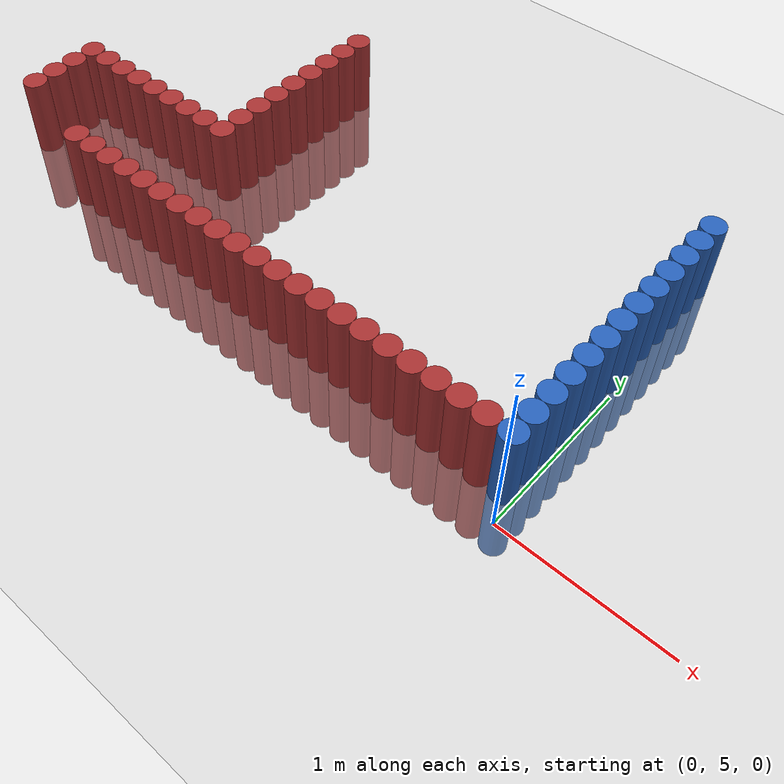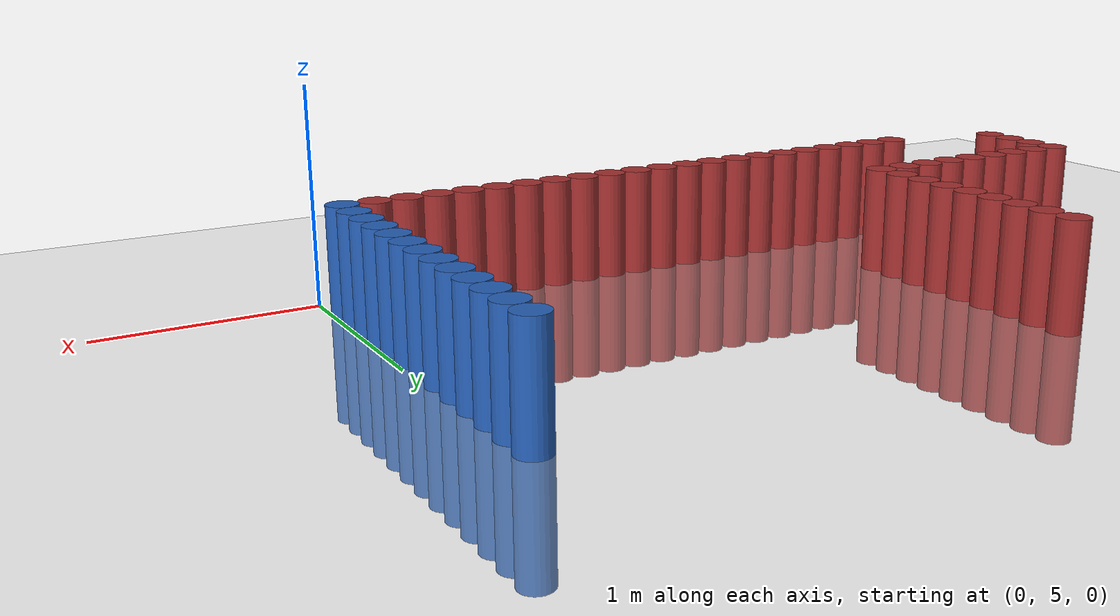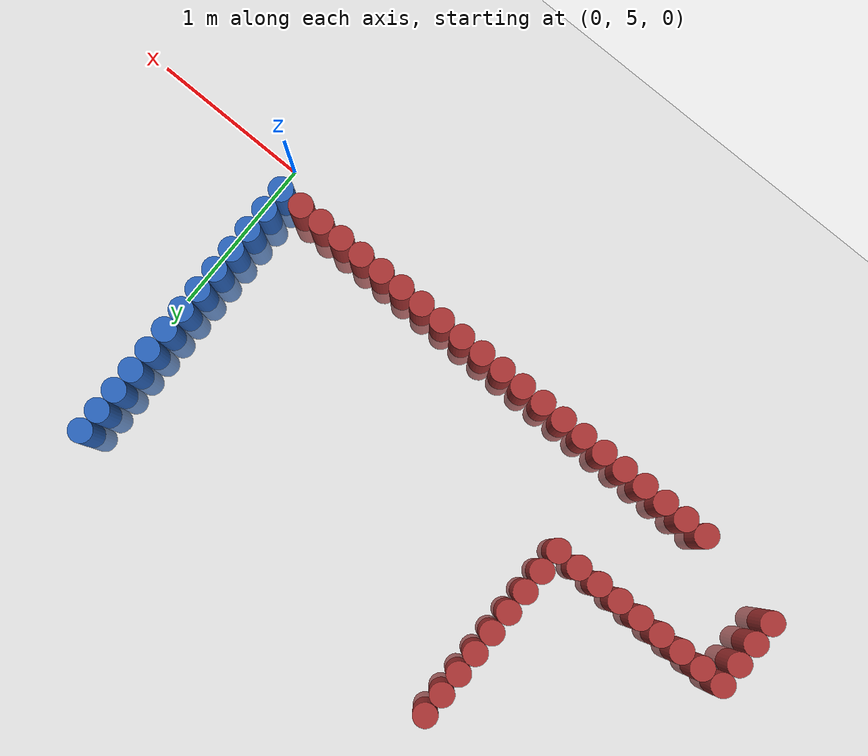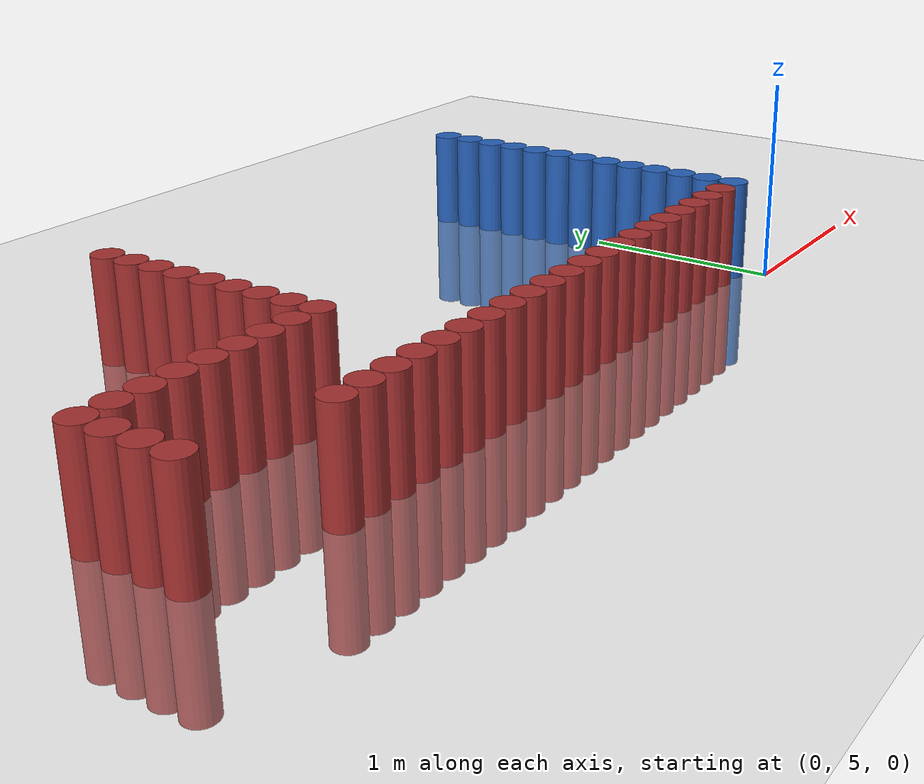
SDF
<sdf version="1.6">
 <world name="default">
  <model name="ground_plane">
   <static>1</static>
   <link name="link">
    <collision name="collision">
     <geometry><plane><normal>0 0 1</normal><size>100 100</size></plane></geometry>
     <surface><friction><ode><mu>100</mu><mu2>50</mu2></ode></friction></surface>
    </collision>
    <visual name="visual">
     <cast_shadows>0</cast_shadows>
     <geometry><plane><normal>0 0 1</normal><size>100 100</size></plane></geometry>
     <material>
      <script><uri>file://media/materials/scripts/gazebo.material</uri><name>Gazebo/Grey</name></script>
     </material>
    </visual>
   </link>
  </model>
  <model name="unit_cylinder_273">
   <static>1</static>
   <pose>-3.825000 5.325000 0.000000 0.000000 0.000000 0.000000</pose>
   <link name="link">
    <inertial>
     <mass>1</mass>
     <inertia><ixx>0.145833</ixx><ixy>0</ixy><ixz>0</ixz><iyy>0.145833</iyy><iyz>0</iyz><izz>0.125</izz></inertia>
    </inertial>
    <collision name="collision">
     <geometry><cylinder><radius>0.075000</radius><length>1</length></cylinder></geometry>
    </collision>
    <visual name="visual">
     <geometry><cylinder><radius>0.075000</radius><length>1</length></cylinder></geometry>
     <material>
      <ambient>0.648000 0.192000 0.192000 1</ambient>
      <diffuse>0.648000 0.192000 0.192000 1</diffuse>
     </material>
     <material>
      <script><name>Gazebo/Grey</name><uri>file://media/materials/scripts/gazebo.material</uri></script>
     </material>
    </visual>
   </link>
  </model>
  <model name="unit_cylinder_274">
   <static>1</static>
   <pose>-3.825000 5.475000 0.000000 0.000000 0.000000 0.000000</pose>
   <link name="link">
    <inertial>
     <mass>1</mass>
     <inertia><ixx>0.145833</ixx><ixy>0</ixy><ixz>0</ixz><iyy>0.145833</iyy><iyz>0</iyz><izz>0.125</izz></inertia>
    </inertial>
    <collision name="collision">
     <geometry><cylinder><radius>0.075000</radius><length>1</length></cylinder></geometry>
    </collision>
    <visual name="visual">
     <geometry><cylinder><radius>0.075000</radius><length>1</length></cylinder></geometry>
     <material>
      <ambient>0.648000 0.192000 0.192000 1</ambient>
      <diffuse>0.648000 0.192000 0.192000 1</diffuse>
     </material>
     <material>
      <script><name>Gazebo/Grey</name><uri>file://media/materials/scripts/gazebo.material</uri></script>
     </material>
    </visual>
   </link>
  </model>
  <model name="unit_cylinder_275">
   <static>1</static>
   <pose>-3.825000 5.625000 0.000000 0.000000 0.000000 0.000000</pose>
   <link name="link">
    <inertial>
     <mass>1</mass>
     <inertia><ixx>0.145833</ixx><ixy>0</ixy><ixz>0</ixz><iyy>0.145833</iyy><iyz>0</iyz><izz>0.125</izz></inertia>
    </inertial>
    <collision name="collision">
     <geometry><cylinder><radius>0.075000</radius><length>1</length></cylinder></geometry>
    </collision>
    <visual name="visual">
     <geometry><cylinder><radius>0.075000</radius><length>1</length></cylinder></geometry>
     <material>
      <ambient>0.648000 0.192000 0.192000 1</ambient>
      <diffuse>0.648000 0.192000 0.192000 1</diffuse>
     </material>
     <material>
      <script><name>Gazebo/Grey</name><uri>file://media/materials/scripts/gazebo.material</uri></script>
     </material>
    </visual>
   </link>
  </model>
  <model name="unit_cylinder_276">
   <static>1</static>
   <pose>-3.825000 5.775000 0.000000 0.000000 0.000000 0.000000</pose>
   <link name="link">
    <inertial>
     <mass>1</mass>
     <inertia><ixx>0.145833</ixx><ixy>0</ixy><ixz>0</ixz><iyy>0.145833</iyy><iyz>0</iyz><izz>0.125</izz></inertia>
    </inertial>
    <collision name="collision">
     <geometry><cylinder><radius>0.075000</radius><length>1</length></cylinder></geometry>
    </collision>
    <visual name="visual">
     <geometry><cylinder><radius>0.075000</radius><length>1</length></cylinder></geometry>
     <material>
      <ambient>0.648000 0.192000 0.192000 1</ambient>
      <diffuse>0.648000 0.192000 0.192000 1</diffuse>
     </material>
     <material>
      <script><name>Gazebo/Grey</name><uri>file://media/materials/scripts/gazebo.material</uri></script>
     </material>
    </visual>
   </link>
  </model>
  <model name="unit_cylinder_278">
   <static>1</static>
   <pose>-3.675000 5.775000 0.000000 0.000000 0.000000 0.000000</pose>
   <link name="link">
    <inertial>
     <mass>1</mass>
     <inertia><ixx>0.145833</ixx><ixy>0</ixy><ixz>0</ixz><iyy>0.145833</iyy><iyz>0</iyz><izz>0.125</izz></inertia>
    </inertial>
    <collision name="collision">
     <geometry><cylinder><radius>0.075000</radius><length>1</length></cylinder></geometry>
    </collision>
    <visual name="visual">
     <geometry><cylinder><radius>0.075000</radius><length>1</length></cylinder></geometry>
     <material>
      <ambient>0.648000 0.192000 0.192000 1</ambient>
      <diffuse>0.648000 0.192000 0.192000 1</diffuse>
     </material>
     <material>
      <script><name>Gazebo/Grey</name><uri>file://media/materials/scripts/gazebo.material</uri></script>
     </material>
    </visual>
   </link>
  </model>
  <model name="unit_cylinder_280">
   <static>1</static>
   <pose>-3.525000 5.775000 0.000000 0.000000 0.000000 0.000000</pose>
   <link name="link">
    <inertial>
     <mass>1</mass>
     <inertia><ixx>0.145833</ixx><ixy>0</ixy><ixz>0</ixz><iyy>0.145833</iyy><iyz>0</iyz><izz>0.125</izz></inertia>
    </inertial>
    <collision name="collision">
     <geometry><cylinder><radius>0.075000</radius><length>1</length></cylinder></geometry>
    </collision>
    <visual name="visual">
     <geometry><cylinder><radius>0.075000</radius><length>1</length></cylinder></geometry>
     <material>
      <ambient>0.648000 0.192000 0.192000 1</ambient>
      <diffuse>0.648000 0.192000 0.192000 1</diffuse>
     </material>
     <material>
      <script><name>Gazebo/Grey</name><uri>file://media/materials/scripts/gazebo.material</uri></script>
     </material>
    </visual>
   </link>
  </model>
  <model name="unit_cylinder_282">
   <static>1</static>
   <pose>-3.375000 5.775000 0.000000 0.000000 0.000000 0.000000</pose>
   <link name="link">
    <inertial>
     <mass>1</mass>
     <inertia><ixx>0.145833</ixx><ixy>0</ixy><ixz>0</ixz><iyy>0.145833</iyy><iyz>0</iyz><izz>0.125</izz></inertia>
    </inertial>
    <collision name="collision">
     <geometry><cylinder><radius>0.075000</radius><length>1</length></cylinder></geometry>
    </collision>
    <visual name="visual">
     <geometry><cylinder><radius>0.075000</radius><length>1</length></cylinder></geometry>
     <material>
      <ambient>0.648000 0.192000 0.192000 1</ambient>
      <diffuse>0.648000 0.192000 0.192000 1</diffuse>
     </material>
     <material>
      <script><name>Gazebo/Grey</name><uri>file://media/materials/scripts/gazebo.material</uri></script>
     </material>
    </visual>
   </link>
  </model>
  <model name="unit_cylinder_283">
   <static>1</static>
   <pose>-3.225000 5.175000 0.000000 0.000000 0.000000 0.000000</pose>
   <link name="link">
    <inertial>
     <mass>1</mass>
     <inertia><ixx>0.145833</ixx><ixy>0</ixy><ixz>0</ixz><iyy>0.145833</iyy><iyz>0</iyz><izz>0.125</izz></inertia>
    </inertial>
    <collision name="collision">
     <geometry><cylinder><radius>0.075000</radius><length>1</length></cylinder></geometry>
    </collision>
    <visual name="visual">
     <geometry><cylinder><radius>0.075000</radius><length>1</length></cylinder></geometry>
     <material>
      <ambient>0.648000 0.192000 0.192000 1</ambient>
      <diffuse>0.648000 0.192000 0.192000 1</diffuse>
     </material>
     <material>
      <script><name>Gazebo/Grey</name><uri>file://media/materials/scripts/gazebo.material</uri></script>
     </material>
    </visual>
   </link>
  </model>
  <model name="unit_cylinder_284">
   <static>1</static>
   <pose>-3.225000 5.775000 0.000000 0.000000 0.000000 0.000000</pose>
   <link name="link">
    <inertial>
     <mass>1</mass>
     <inertia><ixx>0.145833</ixx><ixy>0</ixy><ixz>0</ixz><iyy>0.145833</iyy><iyz>0</iyz><izz>0.125</izz></inertia>
    </inertial>
    <collision name="collision">
     <geometry><cylinder><radius>0.075000</radius><length>1</length></cylinder></geometry>
    </collision>
    <visual name="visual">
     <geometry><cylinder><radius>0.075000</radius><length>1</length></cylinder></geometry>
     <material>
      <ambient>0.648000 0.192000 0.192000 1</ambient>
      <diffuse>0.648000 0.192000 0.192000 1</diffuse>
     </material>
     <material>
      <script><name>Gazebo/Grey</name><uri>file://media/materials/scripts/gazebo.material</uri></script>
     </material>
    </visual>
   </link>
  </model>
  <model name="unit_cylinder_285">
   <static>1</static>
   <pose>-3.075000 5.175000 0.000000 0.000000 0.000000 0.000000</pose>
   <link name="link">
    <inertial>
     <mass>1</mass>
     <inertia><ixx>0.145833</ixx><ixy>0</ixy><ixz>0</ixz><iyy>0.145833</iyy><iyz>0</iyz><izz>0.125</izz></inertia>
    </inertial>
    <collision name="collision">
     <geometry><cylinder><radius>0.075000</radius><length>1</length></cylinder></geometry>
    </collision>
    <visual name="visual">
     <geometry><cylinder><radius>0.075000</radius><length>1</length></cylinder></geometry>
     <material>
      <ambient>0.648000 0.192000 0.192000 1</ambient>
      <diffuse>0.648000 0.192000 0.192000 1</diffuse>
     </material>
     <material>
      <script><name>Gazebo/Grey</name><uri>file://media/materials/scripts/gazebo.material</uri></script>
     </material>
    </visual>
   </link>
  </model>
  <model name="unit_cylinder_286">
   <static>1</static>
   <pose>-3.075000 5.775000 0.000000 0.000000 0.000000 0.000000</pose>
   <link name="link">
    <inertial>
     <mass>1</mass>
     <inertia><ixx>0.145833</ixx><ixy>0</ixy><ixz>0</ixz><iyy>0.145833</iyy><iyz>0</iyz><izz>0.125</izz></inertia>
    </inertial>
    <collision name="collision">
     <geometry><cylinder><radius>0.075000</radius><length>1</length></cylinder></geometry>
    </collision>
    <visual name="visual">
     <geometry><cylinder><radius>0.075000</radius><length>1</length></cylinder></geometry>
     <material>
      <ambient>0.648000 0.192000 0.192000 1</ambient>
      <diffuse>0.648000 0.192000 0.192000 1</diffuse>
     </material>
     <material>
      <script><name>Gazebo/Grey</name><uri>file://media/materials/scripts/gazebo.material</uri></script>
     </material>
    </visual>
   </link>
  </model>
  <model name="unit_cylinder_287">
   <static>1</static>
   <pose>-2.925000 5.175000 0.000000 0.000000 0.000000 0.000000</pose>
   <link name="link">
    <inertial>
     <mass>1</mass>
     <inertia><ixx>0.145833</ixx><ixy>0</ixy><ixz>0</ixz><iyy>0.145833</iyy><iyz>0</iyz><izz>0.125</izz></inertia>
    </inertial>
    <collision name="collision">
     <geometry><cylinder><radius>0.075000</radius><length>1</length></cylinder></geometry>
    </collision>
    <visual name="visual">
     <geometry><cylinder><radius>0.075000</radius><length>1</length></cylinder></geometry>
     <material>
      <ambient>0.648000 0.192000 0.192000 1</ambient>
      <diffuse>0.648000 0.192000 0.192000 1</diffuse>
     </material>
     <material>
      <script><name>Gazebo/Grey</name><uri>file://media/materials/scripts/gazebo.material</uri></script>
     </material>
    </visual>
   </link>
  </model>
  <model name="unit_cylinder_288">
   <static>1</static>
   <pose>-2.925000 5.775000 0.000000 0.000000 0.000000 0.000000</pose>
   <link name="link">
    <inertial>
     <mass>1</mass>
     <inertia><ixx>0.145833</ixx><ixy>0</ixy><ixz>0</ixz><iyy>0.145833</iyy><iyz>0</iyz><izz>0.125</izz></inertia>
    </inertial>
    <collision name="collision">
     <geometry><cylinder><radius>0.075000</radius><length>1</length></cylinder></geometry>
    </collision>
    <visual name="visual">
     <geometry><cylinder><radius>0.075000</radius><length>1</length></cylinder></geometry>
     <material>
      <ambient>0.648000 0.192000 0.192000 1</ambient>
      <diffuse>0.648000 0.192000 0.192000 1</diffuse>
     </material>
     <material>
      <script><name>Gazebo/Grey</name><uri>file://media/materials/scripts/gazebo.material</uri></script>
     </material>
    </visual>
   </link>
  </model>
  <model name="unit_cylinder_289">
   <static>1</static>
   <pose>-2.775000 5.175000 0.000000 0.000000 0.000000 0.000000</pose>
   <link name="link">
    <inertial>
     <mass>1</mass>
     <inertia><ixx>0.145833</ixx><ixy>0</ixy><ixz>0</ixz><iyy>0.145833</iyy><iyz>0</iyz><izz>0.125</izz></inertia>
    </inertial>
    <collision name="collision">
     <geometry><cylinder><radius>0.075000</radius><length>1</length></cylinder></geometry>
    </collision>
    <visual name="visual">
     <geometry><cylinder><radius>0.075000</radius><length>1</length></cylinder></geometry>
     <material>
      <ambient>0.648000 0.192000 0.192000 1</ambient>
      <diffuse>0.648000 0.192000 0.192000 1</diffuse>
     </material>
     <material>
      <script><name>Gazebo/Grey</name><uri>file://media/materials/scripts/gazebo.material</uri></script>
     </material>
    </visual>
   </link>
  </model>
  <model name="unit_cylinder_290">
   <static>1</static>
   <pose>-2.775000 5.775000 0.000000 0.000000 0.000000 0.000000</pose>
   <link name="link">
    <inertial>
     <mass>1</mass>
     <inertia><ixx>0.145833</ixx><ixy>0</ixy><ixz>0</ixz><iyy>0.145833</iyy><iyz>0</iyz><izz>0.125</izz></inertia>
    </inertial>
    <collision name="collision">
     <geometry><cylinder><radius>0.075000</radius><length>1</length></cylinder></geometry>
    </collision>
    <visual name="visual">
     <geometry><cylinder><radius>0.075000</radius><length>1</length></cylinder></geometry>
     <material>
      <ambient>0.648000 0.192000 0.192000 1</ambient>
      <diffuse>0.648000 0.192000 0.192000 1</diffuse>
     </material>
     <material>
      <script><name>Gazebo/Grey</name><uri>file://media/materials/scripts/gazebo.material</uri></script>
     </material>
    </visual>
   </link>
  </model>
  <model name="unit_cylinder_291">
   <static>1</static>
   <pose>-2.625000 5.175000 0.000000 0.000000 0.000000 0.000000</pose>
   <link name="link">
    <inertial>
     <mass>1</mass>
     <inertia><ixx>0.145833</ixx><ixy>0</ixy><ixz>0</ixz><iyy>0.145833</iyy><iyz>0</iyz><izz>0.125</izz></inertia>
    </inertial>
    <collision name="collision">
     <geometry><cylinder><radius>0.075000</radius><length>1</length></cylinder></geometry>
    </collision>
    <visual name="visual">
     <geometry><cylinder><radius>0.075000</radius><length>1</length></cylinder></geometry>
     <material>
      <ambient>0.648000 0.192000 0.192000 1</ambient>
      <diffuse>0.648000 0.192000 0.192000 1</diffuse>
     </material>
     <material>
      <script><name>Gazebo/Grey</name><uri>file://media/materials/scripts/gazebo.material</uri></script>
     </material>
    </visual>
   </link>
  </model>
  <model name="unit_cylinder_292">
   <static>1</static>
   <pose>-2.625000 5.775000 0.000000 0.000000 0.000000 0.000000</pose>
   <link name="link">
    <inertial>
     <mass>1</mass>
     <inertia><ixx>0.145833</ixx><ixy>0</ixy><ixz>0</ixz><iyy>0.145833</iyy><iyz>0</iyz><izz>0.125</izz></inertia>
    </inertial>
    <collision name="collision">
     <geometry><cylinder><radius>0.075000</radius><length>1</length></cylinder></geometry>
    </collision>
    <visual name="visual">
     <geometry><cylinder><radius>0.075000</radius><length>1</length></cylinder></geometry>
     <material>
      <ambient>0.648000 0.192000 0.192000 1</ambient>
      <diffuse>0.648000 0.192000 0.192000 1</diffuse>
     </material>
     <material>
      <script><name>Gazebo/Grey</name><uri>file://media/materials/scripts/gazebo.material</uri></script>
     </material>
    </visual>
   </link>
  </model>
  <model name="unit_cylinder_293">
   <static>1</static>
   <pose>-2.625000 5.925000 0.000000 0.000000 0.000000 0.000000</pose>
   <link name="link">
    <inertial>
     <mass>1</mass>
     <inertia><ixx>0.145833</ixx><ixy>0</ixy><ixz>0</ixz><iyy>0.145833</iyy><iyz>0</iyz><izz>0.125</izz></inertia>
    </inertial>
    <collision name="collision">
     <geometry><cylinder><radius>0.075000</radius><length>1</length></cylinder></geometry>
    </collision>
    <visual name="visual">
     <geometry><cylinder><radius>0.075000</radius><length>1</length></cylinder></geometry>
     <material>
      <ambient>0.648000 0.192000 0.192000 1</ambient>
      <diffuse>0.648000 0.192000 0.192000 1</diffuse>
     </material>
     <material>
      <script><name>Gazebo/Grey</name><uri>file://media/materials/scripts/gazebo.material</uri></script>
     </material>
    </visual>
   </link>
  </model>
  <model name="unit_cylinder_294">
   <static>1</static>
   <pose>-2.625000 6.075000 0.000000 0.000000 0.000000 0.000000</pose>
   <link name="link">
    <inertial>
     <mass>1</mass>
     <inertia><ixx>0.145833</ixx><ixy>0</ixy><ixz>0</ixz><iyy>0.145833</iyy><iyz>0</iyz><izz>0.125</izz></inertia>
    </inertial>
    <collision name="collision">
     <geometry><cylinder><radius>0.075000</radius><length>1</length></cylinder></geometry>
    </collision>
    <visual name="visual">
     <geometry><cylinder><radius>0.075000</radius><length>1</length></cylinder></geometry>
     <material>
      <ambient>0.648000 0.192000 0.192000 1</ambient>
      <diffuse>0.648000 0.192000 0.192000 1</diffuse>
     </material>
     <material>
      <script><name>Gazebo/Grey</name><uri>file://media/materials/scripts/gazebo.material</uri></script>
     </material>
    </visual>
   </link>
  </model>
  <model name="unit_cylinder_295">
   <static>1</static>
   <pose>-2.625000 6.225000 0.000000 0.000000 0.000000 0.000000</pose>
   <link name="link">
    <inertial>
     <mass>1</mass>
     <inertia><ixx>0.145833</ixx><ixy>0</ixy><ixz>0</ixz><iyy>0.145833</iyy><iyz>0</iyz><izz>0.125</izz></inertia>
    </inertial>
    <collision name="collision">
     <geometry><cylinder><radius>0.075000</radius><length>1</length></cylinder></geometry>
    </collision>
    <visual name="visual">
     <geometry><cylinder><radius>0.075000</radius><length>1</length></cylinder></geometry>
     <material>
      <ambient>0.648000 0.192000 0.192000 1</ambient>
      <diffuse>0.648000 0.192000 0.192000 1</diffuse>
     </material>
     <material>
      <script><name>Gazebo/Grey</name><uri>file://media/materials/scripts/gazebo.material</uri></script>
     </material>
    </visual>
   </link>
  </model>
  <model name="unit_cylinder_296">
   <static>1</static>
   <pose>-2.625000 6.375000 0.000000 0.000000 0.000000 0.000000</pose>
   <link name="link">
    <inertial>
     <mass>1</mass>
     <inertia><ixx>0.145833</ixx><ixy>0</ixy><ixz>0</ixz><iyy>0.145833</iyy><iyz>0</iyz><izz>0.125</izz></inertia>
    </inertial>
    <collision name="collision">
     <geometry><cylinder><radius>0.075000</radius><length>1</length></cylinder></geometry>
    </collision>
    <visual name="visual">
     <geometry><cylinder><radius>0.075000</radius><length>1</length></cylinder></geometry>
     <material>
      <ambient>0.648000 0.192000 0.192000 1</ambient>
      <diffuse>0.648000 0.192000 0.192000 1</diffuse>
     </material>
     <material>
      <script><name>Gazebo/Grey</name><uri>file://media/materials/scripts/gazebo.material</uri></script>
     </material>
    </visual>
   </link>
  </model>
  <model name="unit_cylinder_297">
   <static>1</static>
   <pose>-2.625000 6.525000 0.000000 0.000000 0.000000 0.000000</pose>
   <link name="link">
    <inertial>
     <mass>1</mass>
     <inertia><ixx>0.145833</ixx><ixy>0</ixy><ixz>0</ixz><iyy>0.145833</iyy><iyz>0</iyz><izz>0.125</izz></inertia>
    </inertial>
    <collision name="collision">
     <geometry><cylinder><radius>0.075000</radius><length>1</length></cylinder></geometry>
    </collision>
    <visual name="visual">
     <geometry><cylinder><radius>0.075000</radius><length>1</length></cylinder></geometry>
     <material>
      <ambient>0.648000 0.192000 0.192000 1</ambient>
      <diffuse>0.648000 0.192000 0.192000 1</diffuse>
     </material>
     <material>
      <script><name>Gazebo/Grey</name><uri>file://media/materials/scripts/gazebo.material</uri></script>
     </material>
    </visual>
   </link>
  </model>
  <model name="unit_cylinder_298">
   <static>1</static>
   <pose>-2.625000 6.675000 0.000000 0.000000 0.000000 0.000000</pose>
   <link name="link">
    <inertial>
     <mass>1</mass>
     <inertia><ixx>0.145833</ixx><ixy>0</ixy><ixz>0</ixz><iyy>0.145833</iyy><iyz>0</iyz><izz>0.125</izz></inertia>
    </inertial>
    <collision name="collision">
     <geometry><cylinder><radius>0.075000</radius><length>1</length></cylinder></geometry>
    </collision>
    <visual name="visual">
     <geometry><cylinder><radius>0.075000</radius><length>1</length></cylinder></geometry>
     <material>
      <ambient>0.648000 0.192000 0.192000 1</ambient>
      <diffuse>0.648000 0.192000 0.192000 1</diffuse>
     </material>
     <material>
      <script><name>Gazebo/Grey</name><uri>file://media/materials/scripts/gazebo.material</uri></script>
     </material>
    </visual>
   </link>
  </model>
  <model name="unit_cylinder_299">
   <static>1</static>
   <pose>-2.625000 6.825000 0.000000 0.000000 0.000000 0.000000</pose>
   <link name="link">
    <inertial>
     <mass>1</mass>
     <inertia><ixx>0.145833</ixx><ixy>0</ixy><ixz>0</ixz><iyy>0.145833</iyy><iyz>0</iyz><izz>0.125</izz></inertia>
    </inertial>
    <collision name="collision">
     <geometry><cylinder><radius>0.075000</radius><length>1</length></cylinder></geometry>
    </collision>
    <visual name="visual">
     <geometry><cylinder><radius>0.075000</radius><length>1</length></cylinder></geometry>
     <material>
      <ambient>0.648000 0.192000 0.192000 1</ambient>
      <diffuse>0.648000 0.192000 0.192000 1</diffuse>
     </material>
     <material>
      <script><name>Gazebo/Grey</name><uri>file://media/materials/scripts/gazebo.material</uri></script>
     </material>
    </visual>
   </link>
  </model>
  <model name="unit_cylinder_300">
   <static>1</static>
   <pose>-2.625000 6.975000 0.000000 0.000000 0.000000 0.000000</pose>
   <link name="link">
    <inertial>
     <mass>1</mass>
     <inertia><ixx>0.145833</ixx><ixy>0</ixy><ixz>0</ixz><iyy>0.145833</iyy><iyz>0</iyz><izz>0.125</izz></inertia>
    </inertial>
    <collision name="collision">
     <geometry><cylinder><radius>0.075000</radius><length>1</length></cylinder></geometry>
    </collision>
    <visual name="visual">
     <geometry><cylinder><radius>0.075000</radius><length>1</length></cylinder></geometry>
     <material>
      <ambient>0.648000 0.192000 0.192000 1</ambient>
      <diffuse>0.648000 0.192000 0.192000 1</diffuse>
     </material>
     <material>
      <script><name>Gazebo/Grey</name><uri>file://media/materials/scripts/gazebo.material</uri></script>
     </material>
    </visual>
   </link>
  </model>
  <model name="unit_cylinder_318">
   <static>1</static>
   <pose>-2.475000 5.175000 0.000000 0.000000 0.000000 0.000000</pose>
   <link name="link">
    <inertial>
     <mass>1</mass>
     <inertia><ixx>0.145833</ixx><ixy>0</ixy><ixz>0</ixz><iyy>0.145833</iyy><iyz>0</iyz><izz>0.125</izz></inertia>
    </inertial>
    <collision name="collision">
     <geometry><cylinder><radius>0.075000</radius><length>1</length></cylinder></geometry>
    </collision>
    <visual name="visual">
     <geometry><cylinder><radius>0.075000</radius><length>1</length></cylinder></geometry>
     <material>
      <ambient>0.648000 0.192000 0.192000 1</ambient>
      <diffuse>0.648000 0.192000 0.192000 1</diffuse>
     </material>
     <material>
      <script><name>Gazebo/Grey</name><uri>file://media/materials/scripts/gazebo.material</uri></script>
     </material>
    </visual>
   </link>
  </model>
  <model name="unit_cylinder_320">
   <static>1</static>
   <pose>-2.325000 5.175000 0.000000 0.000000 0.000000 0.000000</pose>
   <link name="link">
    <inertial>
     <mass>1</mass>
     <inertia><ixx>0.145833</ixx><ixy>0</ixy><ixz>0</ixz><iyy>0.145833</iyy><iyz>0</iyz><izz>0.125</izz></inertia>
    </inertial>
    <collision name="collision">
     <geometry><cylinder><radius>0.075000</radius><length>1</length></cylinder></geometry>
    </collision>
    <visual name="visual">
     <geometry><cylinder><radius>0.075000</radius><length>1</length></cylinder></geometry>
     <material>
      <ambient>0.648000 0.192000 0.192000 1</ambient>
      <diffuse>0.648000 0.192000 0.192000 1</diffuse>
     </material>
     <material>
      <script><name>Gazebo/Grey</name><uri>file://media/materials/scripts/gazebo.material</uri></script>
     </material>
    </visual>
   </link>
  </model>
  <model name="unit_cylinder_322">
   <static>1</static>
   <pose>-2.175000 5.175000 0.000000 0.000000 0.000000 0.000000</pose>
   <link name="link">
    <inertial>
     <mass>1</mass>
     <inertia><ixx>0.145833</ixx><ixy>0</ixy><ixz>0</ixz><iyy>0.145833</iyy><iyz>0</iyz><izz>0.125</izz></inertia>
    </inertial>
    <collision name="collision">
     <geometry><cylinder><radius>0.075000</radius><length>1</length></cylinder></geometry>
    </collision>
    <visual name="visual">
     <geometry><cylinder><radius>0.075000</radius><length>1</length></cylinder></geometry>
     <material>
      <ambient>0.648000 0.192000 0.192000 1</ambient>
      <diffuse>0.648000 0.192000 0.192000 1</diffuse>
     </material>
     <material>
      <script><name>Gazebo/Grey</name><uri>file://media/materials/scripts/gazebo.material</uri></script>
     </material>
    </visual>
   </link>
  </model>
  <model name="unit_cylinder_324">
   <static>1</static>
   <pose>-2.025000 5.175000 0.000000 0.000000 0.000000 0.000000</pose>
   <link name="link">
    <inertial>
     <mass>1</mass>
     <inertia><ixx>0.145833</ixx><ixy>0</ixy><ixz>0</ixz><iyy>0.145833</iyy><iyz>0</iyz><izz>0.125</izz></inertia>
    </inertial>
    <collision name="collision">
     <geometry><cylinder><radius>0.075000</radius><length>1</length></cylinder></geometry>
    </collision>
    <visual name="visual">
     <geometry><cylinder><radius>0.075000</radius><length>1</length></cylinder></geometry>
     <material>
      <ambient>0.648000 0.192000 0.192000 1</ambient>
      <diffuse>0.648000 0.192000 0.192000 1</diffuse>
     </material>
     <material>
      <script><name>Gazebo/Grey</name><uri>file://media/materials/scripts/gazebo.material</uri></script>
     </material>
    </visual>
   </link>
  </model>
  <model name="unit_cylinder_326">
   <static>1</static>
   <pose>-1.875000 5.175000 0.000000 0.000000 0.000000 0.000000</pose>
   <link name="link">
    <inertial>
     <mass>1</mass>
     <inertia><ixx>0.145833</ixx><ixy>0</ixy><ixz>0</ixz><iyy>0.145833</iyy><iyz>0</iyz><izz>0.125</izz></inertia>
    </inertial>
    <collision name="collision">
     <geometry><cylinder><radius>0.075000</radius><length>1</length></cylinder></geometry>
    </collision>
    <visual name="visual">
     <geometry><cylinder><radius>0.075000</radius><length>1</length></cylinder></geometry>
     <material>
      <ambient>0.648000 0.192000 0.192000 1</ambient>
      <diffuse>0.648000 0.192000 0.192000 1</diffuse>
     </material>
     <material>
      <script><name>Gazebo/Grey</name><uri>file://media/materials/scripts/gazebo.material</uri></script>
     </material>
    </visual>
   </link>
  </model>
  <model name="unit_cylinder_328">
   <static>1</static>
   <pose>-1.725000 5.175000 0.000000 0.000000 0.000000 0.000000</pose>
   <link name="link">
    <inertial>
     <mass>1</mass>
     <inertia><ixx>0.145833</ixx><ixy>0</ixy><ixz>0</ixz><iyy>0.145833</iyy><iyz>0</iyz><izz>0.125</izz></inertia>
    </inertial>
    <collision name="collision">
     <geometry><cylinder><radius>0.075000</radius><length>1</length></cylinder></geometry>
    </collision>
    <visual name="visual">
     <geometry><cylinder><radius>0.075000</radius><length>1</length></cylinder></geometry>
     <material>
      <ambient>0.648000 0.192000 0.192000 1</ambient>
      <diffuse>0.648000 0.192000 0.192000 1</diffuse>
     </material>
     <material>
      <script><name>Gazebo/Grey</name><uri>file://media/materials/scripts/gazebo.material</uri></script>
     </material>
    </visual>
   </link>
  </model>
  <model name="unit_cylinder_330">
   <static>1</static>
   <pose>-1.575000 5.175000 0.000000 0.000000 0.000000 0.000000</pose>
   <link name="link">
    <inertial>
     <mass>1</mass>
     <inertia><ixx>0.145833</ixx><ixy>0</ixy><ixz>0</ixz><iyy>0.145833</iyy><iyz>0</iyz><izz>0.125</izz></inertia>
    </inertial>
    <collision name="collision">
     <geometry><cylinder><radius>0.075000</radius><length>1</length></cylinder></geometry>
    </collision>
    <visual name="visual">
     <geometry><cylinder><radius>0.075000</radius><length>1</length></cylinder></geometry>
     <material>
      <ambient>0.648000 0.192000 0.192000 1</ambient>
      <diffuse>0.648000 0.192000 0.192000 1</diffuse>
     </material>
     <material>
      <script><name>Gazebo/Grey</name><uri>file://media/materials/scripts/gazebo.material</uri></script>
     </material>
    </visual>
   </link>
  </model>
  <model name="unit_cylinder_332">
   <static>1</static>
   <pose>-1.425000 5.175000 0.000000 0.000000 0.000000 0.000000</pose>
   <link name="link">
    <inertial>
     <mass>1</mass>
     <inertia><ixx>0.145833</ixx><ixy>0</ixy><ixz>0</ixz><iyy>0.145833</iyy><iyz>0</iyz><izz>0.125</izz></inertia>
    </inertial>
    <collision name="collision">
     <geometry><cylinder><radius>0.075000</radius><length>1</length></cylinder></geometry>
    </collision>
    <visual name="visual">
     <geometry><cylinder><radius>0.075000</radius><length>1</length></cylinder></geometry>
     <material>
      <ambient>0.648000 0.192000 0.192000 1</ambient>
      <diffuse>0.648000 0.192000 0.192000 1</diffuse>
     </material>
     <material>
      <script><name>Gazebo/Grey</name><uri>file://media/materials/scripts/gazebo.material</uri></script>
     </material>
    </visual>
   </link>
  </model>
  <model name="unit_cylinder_334">
   <static>1</static>
   <pose>-1.275000 5.175000 0.000000 0.000000 0.000000 0.000000</pose>
   <link name="link">
    <inertial>
     <mass>1</mass>
     <inertia><ixx>0.145833</ixx><ixy>0</ixy><ixz>0</ixz><iyy>0.145833</iyy><iyz>0</iyz><izz>0.125</izz></inertia>
    </inertial>
    <collision name="collision">
     <geometry><cylinder><radius>0.075000</radius><length>1</length></cylinder></geometry>
    </collision>
    <visual name="visual">
     <geometry><cylinder><radius>0.075000</radius><length>1</length></cylinder></geometry>
     <material>
      <ambient>0.648000 0.192000 0.192000 1</ambient>
      <diffuse>0.648000 0.192000 0.192000 1</diffuse>
     </material>
     <material>
      <script><name>Gazebo/Grey</name><uri>file://media/materials/scripts/gazebo.material</uri></script>
     </material>
    </visual>
   </link>
  </model>
  <model name="unit_cylinder_336">
   <static>1</static>
   <pose>-1.125000 5.175000 0.000000 0.000000 0.000000 0.000000</pose>
   <link name="link">
    <inertial>
     <mass>1</mass>
     <inertia><ixx>0.145833</ixx><ixy>0</ixy><ixz>0</ixz><iyy>0.145833</iyy><iyz>0</iyz><izz>0.125</izz></inertia>
    </inertial>
    <collision name="collision">
     <geometry><cylinder><radius>0.075000</radius><length>1</length></cylinder></geometry>
    </collision>
    <visual name="visual">
     <geometry><cylinder><radius>0.075000</radius><length>1</length></cylinder></geometry>
     <material>
      <ambient>0.648000 0.192000 0.192000 1</ambient>
      <diffuse>0.648000 0.192000 0.192000 1</diffuse>
     </material>
     <material>
      <script><name>Gazebo/Grey</name><uri>file://media/materials/scripts/gazebo.material</uri></script>
     </material>
    </visual>
   </link>
  </model>
  <model name="unit_cylinder_338">
   <static>1</static>
   <pose>-0.975000 5.175000 0.000000 0.000000 0.000000 0.000000</pose>
   <link name="link">
    <inertial>
     <mass>1</mass>
     <inertia><ixx>0.145833</ixx><ixy>0</ixy><ixz>0</ixz><iyy>0.145833</iyy><iyz>0</iyz><izz>0.125</izz></inertia>
    </inertial>
    <collision name="collision">
     <geometry><cylinder><radius>0.075000</radius><length>1</length></cylinder></geometry>
    </collision>
    <visual name="visual">
     <geometry><cylinder><radius>0.075000</radius><length>1</length></cylinder></geometry>
     <material>
      <ambient>0.648000 0.192000 0.192000 1</ambient>
      <diffuse>0.648000 0.192000 0.192000 1</diffuse>
     </material>
     <material>
      <script><name>Gazebo/Grey</name><uri>file://media/materials/scripts/gazebo.material</uri></script>
     </material>
    </visual>
   </link>
  </model>
  <model name="unit_cylinder_340">
   <static>1</static>
   <pose>-0.825000 5.175000 0.000000 0.000000 0.000000 0.000000</pose>
   <link name="link">
    <inertial>
     <mass>1</mass>
     <inertia><ixx>0.145833</ixx><ixy>0</ixy><ixz>0</ixz><iyy>0.145833</iyy><iyz>0</iyz><izz>0.125</izz></inertia>
    </inertial>
    <collision name="collision">
     <geometry><cylinder><radius>0.075000</radius><length>1</length></cylinder></geometry>
    </collision>
    <visual name="visual">
     <geometry><cylinder><radius>0.075000</radius><length>1</length></cylinder></geometry>
     <material>
      <ambient>0.648000 0.192000 0.192000 1</ambient>
      <diffuse>0.648000 0.192000 0.192000 1</diffuse>
     </material>
     <material>
      <script><name>Gazebo/Grey</name><uri>file://media/materials/scripts/gazebo.material</uri></script>
     </material>
    </visual>
   </link>
  </model>
  <model name="unit_cylinder_342">
   <static>1</static>
   <pose>-0.675000 5.175000 0.000000 0.000000 0.000000 0.000000</pose>
   <link name="link">
    <inertial>
     <mass>1</mass>
     <inertia><ixx>0.145833</ixx><ixy>0</ixy><ixz>0</ixz><iyy>0.145833</iyy><iyz>0</iyz><izz>0.125</izz></inertia>
    </inertial>
    <collision name="collision">
     <geometry><cylinder><radius>0.075000</radius><length>1</length></cylinder></geometry>
    </collision>
    <visual name="visual">
     <geometry><cylinder><radius>0.075000</radius><length>1</length></cylinder></geometry>
     <material>
      <ambient>0.648000 0.192000 0.192000 1</ambient>
      <diffuse>0.648000 0.192000 0.192000 1</diffuse>
     </material>
     <material>
      <script><name>Gazebo/Grey</name><uri>file://media/materials/scripts/gazebo.material</uri></script>
     </material>
    </visual>
   </link>
  </model>
  <model name="unit_cylinder_344">
   <static>1</static>
   <pose>-0.525000 5.175000 0.000000 0.000000 0.000000 0.000000</pose>
   <link name="link">
    <inertial>
     <mass>1</mass>
     <inertia><ixx>0.145833</ixx><ixy>0</ixy><ixz>0</ixz><iyy>0.145833</iyy><iyz>0</iyz><izz>0.125</izz></inertia>
    </inertial>
    <collision name="collision">
     <geometry><cylinder><radius>0.075000</radius><length>1</length></cylinder></geometry>
    </collision>
    <visual name="visual">
     <geometry><cylinder><radius>0.075000</radius><length>1</length></cylinder></geometry>
     <material>
      <ambient>0.648000 0.192000 0.192000 1</ambient>
      <diffuse>0.648000 0.192000 0.192000 1</diffuse>
     </material>
     <material>
      <script><name>Gazebo/Grey</name><uri>file://media/materials/scripts/gazebo.material</uri></script>
     </material>
    </visual>
   </link>
  </model>
  <model name="unit_cylinder_346">
   <static>1</static>
   <pose>-0.375000 5.175000 0.000000 0.000000 0.000000 0.000000</pose>
   <link name="link">
    <inertial>
     <mass>1</mass>
     <inertia><ixx>0.145833</ixx><ixy>0</ixy><ixz>0</ixz><iyy>0.145833</iyy><iyz>0</iyz><izz>0.125</izz></inertia>
    </inertial>
    <collision name="collision">
     <geometry><cylinder><radius>0.075000</radius><length>1</length></cylinder></geometry>
    </collision>
    <visual name="visual">
     <geometry><cylinder><radius>0.075000</radius><length>1</length></cylinder></geometry>
     <material>
      <ambient>0.648000 0.192000 0.192000 1</ambient>
      <diffuse>0.648000 0.192000 0.192000 1</diffuse>
     </material>
     <material>
      <script><name>Gazebo/Grey</name><uri>file://media/materials/scripts/gazebo.material</uri></script>
     </material>
    </visual>
   </link>
  </model>
  <model name="unit_cylinder_348">
   <static>1</static>
   <pose>-0.225000 5.175000 0.000000 0.000000 0.000000 0.000000</pose>
   <link name="link">
    <inertial>
     <mass>1</mass>
     <inertia><ixx>0.145833</ixx><ixy>0</ixy><ixz>0</ixz><iyy>0.145833</iyy><iyz>0</iyz><izz>0.125</izz></inertia>
    </inertial>
    <collision name="collision">
     <geometry><cylinder><radius>0.075000</radius><length>1</length></cylinder></geometry>
    </collision>
    <visual name="visual">
     <geometry><cylinder><radius>0.075000</radius><length>1</length></cylinder></geometry>
     <material>
      <ambient>0.648000 0.192000 0.192000 1</ambient>
      <diffuse>0.648000 0.192000 0.192000 1</diffuse>
     </material>
     <material>
      <script><name>Gazebo/Grey</name><uri>file://media/materials/scripts/gazebo.material</uri></script>
     </material>
    </visual>
   </link>
  </model>
  <model name="unit_cylinder_350">
   <static>1</static>
   <pose>-0.075000 5.175000 0.000000 0.000000 0.000000 0.000000</pose>
   <link name="link">
    <inertial>
     <mass>1</mass>
     <inertia><ixx>0.145833</ixx><ixy>0</ixy><ixz>0</ixz><iyy>0.145833</iyy><iyz>0</iyz><izz>0.125</izz></inertia>
    </inertial>
    <collision name="collision">
     <geometry><cylinder><radius>0.075000</radius><length>1</length></cylinder></geometry>
    </collision>
    <visual name="visual">
     <geometry><cylinder><radius>0.075000</radius><length>1</length></cylinder></geometry>
     <material>
      <ambient>0.152000 0.379000 0.720000 1</ambient>
      <diffuse>0.152000 0.379000 0.720000 1</diffuse>
     </material>
     <material>
      <script><name>Gazebo/Grey</name><uri>file://media/materials/scripts/gazebo.material</uri></script>
     </material>
    </visual>
   </link>
  </model>
  <model name="unit_cylinder_351">
   <static>1</static>
   <pose>-0.075000 5.325000 0.000000 0.000000 0.000000 0.000000</pose>
   <link name="link">
    <inertial>
     <mass>1</mass>
     <inertia><ixx>0.145833</ixx><ixy>0</ixy><ixz>0</ixz><iyy>0.145833</iyy><iyz>0</iyz><izz>0.125</izz></inertia>
    </inertial>
    <collision name="collision">
     <geometry><cylinder><radius>0.075000</radius><length>1</length></cylinder></geometry>
    </collision>
    <visual name="visual">
     <geometry><cylinder><radius>0.075000</radius><length>1</length></cylinder></geometry>
     <material>
      <ambient>0.152000 0.379000 0.720000 1</ambient>
      <diffuse>0.152000 0.379000 0.720000 1</diffuse>
     </material>
     <material>
      <script><name>Gazebo/Grey</name><uri>file://media/materials/scripts/gazebo.material</uri></script>
     </material>
    </visual>
   </link>
  </model>
  <model name="unit_cylinder_352">
   <static>1</static>
   <pose>-0.075000 5.475000 0.000000 0.000000 0.000000 0.000000</pose>
   <link name="link">
    <inertial>
     <mass>1</mass>
     <inertia><ixx>0.145833</ixx><ixy>0</ixy><ixz>0</ixz><iyy>0.145833</iyy><iyz>0</iyz><izz>0.125</izz></inertia>
    </inertial>
    <collision name="collision">
     <geometry><cylinder><radius>0.075000</radius><length>1</length></cylinder></geometry>
    </collision>
    <visual name="visual">
     <geometry><cylinder><radius>0.075000</radius><length>1</length></cylinder></geometry>
     <material>
      <ambient>0.152000 0.379000 0.720000 1</ambient>
      <diffuse>0.152000 0.379000 0.720000 1</diffuse>
     </material>
     <material>
      <script><name>Gazebo/Grey</name><uri>file://media/materials/scripts/gazebo.material</uri></script>
     </material>
    </visual>
   </link>
  </model>
  <model name="unit_cylinder_353">
   <static>1</static>
   <pose>-0.075000 5.625000 0.000000 0.000000 0.000000 0.000000</pose>
   <link name="link">
    <inertial>
     <mass>1</mass>
     <inertia><ixx>0.145833</ixx><ixy>0</ixy><ixz>0</ixz><iyy>0.145833</iyy><iyz>0</iyz><izz>0.125</izz></inertia>
    </inertial>
    <collision name="collision">
     <geometry><cylinder><radius>0.075000</radius><length>1</length></cylinder></geometry>
    </collision>
    <visual name="visual">
     <geometry><cylinder><radius>0.075000</radius><length>1</length></cylinder></geometry>
     <material>
      <ambient>0.152000 0.379000 0.720000 1</ambient>
      <diffuse>0.152000 0.379000 0.720000 1</diffuse>
     </material>
     <material>
      <script><name>Gazebo/Grey</name><uri>file://media/materials/scripts/gazebo.material</uri></script>
     </material>
    </visual>
   </link>
  </model>
  <model name="unit_cylinder_354">
   <static>1</static>
   <pose>-0.075000 5.775000 0.000000 0.000000 0.000000 0.000000</pose>
   <link name="link">
    <inertial>
     <mass>1</mass>
     <inertia><ixx>0.145833</ixx><ixy>0</ixy><ixz>0</ixz><iyy>0.145833</iyy><iyz>0</iyz><izz>0.125</izz></inertia>
    </inertial>
    <collision name="collision">
     <geometry><cylinder><radius>0.075000</radius><length>1</length></cylinder></geometry>
    </collision>
    <visual name="visual">
     <geometry><cylinder><radius>0.075000</radius><length>1</length></cylinder></geometry>
     <material>
      <ambient>0.152000 0.379000 0.720000 1</ambient>
      <diffuse>0.152000 0.379000 0.720000 1</diffuse>
     </material>
     <material>
      <script><name>Gazebo/Grey</name><uri>file://media/materials/scripts/gazebo.material</uri></script>
     </material>
    </visual>
   </link>
  </model>
  <model name="unit_cylinder_355">
   <static>1</static>
   <pose>-0.075000 5.925000 0.000000 0.000000 0.000000 0.000000</pose>
   <link name="link">
    <inertial>
     <mass>1</mass>
     <inertia><ixx>0.145833</ixx><ixy>0</ixy><ixz>0</ixz><iyy>0.145833</iyy><iyz>0</iyz><izz>0.125</izz></inertia>
    </inertial>
    <collision name="collision">
     <geometry><cylinder><radius>0.075000</radius><length>1</length></cylinder></geometry>
    </collision>
    <visual name="visual">
     <geometry><cylinder><radius>0.075000</radius><length>1</length></cylinder></geometry>
     <material>
      <ambient>0.152000 0.379000 0.720000 1</ambient>
      <diffuse>0.152000 0.379000 0.720000 1</diffuse>
     </material>
     <material>
      <script><name>Gazebo/Grey</name><uri>file://media/materials/scripts/gazebo.material</uri></script>
     </material>
    </visual>
   </link>
  </model>
  <model name="unit_cylinder_356">
   <static>1</static>
   <pose>-0.075000 6.075000 0.000000 0.000000 0.000000 0.000000</pose>
   <link name="link">
    <inertial>
     <mass>1</mass>
     <inertia><ixx>0.145833</ixx><ixy>0</ixy><ixz>0</ixz><iyy>0.145833</iyy><iyz>0</iyz><izz>0.125</izz></inertia>
    </inertial>
    <collision name="collision">
     <geometry><cylinder><radius>0.075000</radius><length>1</length></cylinder></geometry>
    </collision>
    <visual name="visual">
     <geometry><cylinder><radius>0.075000</radius><length>1</length></cylinder></geometry>
     <material>
      <ambient>0.152000 0.379000 0.720000 1</ambient>
      <diffuse>0.152000 0.379000 0.720000 1</diffuse>
     </material>
     <material>
      <script><name>Gazebo/Grey</name><uri>file://media/materials/scripts/gazebo.material</uri></script>
     </material>
    </visual>
   </link>
  </model>
  <model name="unit_cylinder_357">
   <static>1</static>
   <pose>-0.075000 6.225000 0.000000 0.000000 0.000000 0.000000</pose>
   <link name="link">
    <inertial>
     <mass>1</mass>
     <inertia><ixx>0.145833</ixx><ixy>0</ixy><ixz>0</ixz><iyy>0.145833</iyy><iyz>0</iyz><izz>0.125</izz></inertia>
    </inertial>
    <collision name="collision">
     <geometry><cylinder><radius>0.075000</radius><length>1</length></cylinder></geometry>
    </collision>
    <visual name="visual">
     <geometry><cylinder><radius>0.075000</radius><length>1</length></cylinder></geometry>
     <material>
      <ambient>0.152000 0.379000 0.720000 1</ambient>
      <diffuse>0.152000 0.379000 0.720000 1</diffuse>
     </material>
     <material>
      <script><name>Gazebo/Grey</name><uri>file://media/materials/scripts/gazebo.material</uri></script>
     </material>
    </visual>
   </link>
  </model>
  <model name="unit_cylinder_358">
   <static>1</static>
   <pose>-0.075000 6.375000 0.000000 0.000000 0.000000 0.000000</pose>
   <link name="link">
    <inertial>
     <mass>1</mass>
     <inertia><ixx>0.145833</ixx><ixy>0</ixy><ixz>0</ixz><iyy>0.145833</iyy><iyz>0</iyz><izz>0.125</izz></inertia>
    </inertial>
    <collision name="collision">
     <geometry><cylinder><radius>0.075000</radius><length>1</length></cylinder></geometry>
    </collision>
    <visual name="visual">
     <geometry><cylinder><radius>0.075000</radius><length>1</length></cylinder></geometry>
     <material>
      <ambient>0.152000 0.379000 0.720000 1</ambient>
      <diffuse>0.152000 0.379000 0.720000 1</diffuse>
     </material>
     <material>
      <script><name>Gazebo/Grey</name><uri>file://media/materials/scripts/gazebo.material</uri></script>
     </material>
    </visual>
   </link>
  </model>
  <model name="unit_cylinder_359">
   <static>1</static>
   <pose>-0.075000 6.525000 0.000000 0.000000 0.000000 0.000000</pose>
   <link name="link">
    <inertial>
     <mass>1</mass>
     <inertia><ixx>0.145833</ixx><ixy>0</ixy><ixz>0</ixz><iyy>0.145833</iyy><iyz>0</iyz><izz>0.125</izz></inertia>
    </inertial>
    <collision name="collision">
     <geometry><cylinder><radius>0.075000</radius><length>1</length></cylinder></geometry>
    </collision>
    <visual name="visual">
     <geometry><cylinder><radius>0.075000</radius><length>1</length></cylinder></geometry>
     <material>
      <ambient>0.152000 0.379000 0.720000 1</ambient>
      <diffuse>0.152000 0.379000 0.720000 1</diffuse>
     </material>
     <material>
      <script><name>Gazebo/Grey</name><uri>file://media/materials/scripts/gazebo.material</uri></script>
     </material>
    </visual>
   </link>
  </model>
  <model name="unit_cylinder_360">
   <static>1</static>
   <pose>-0.075000 6.675000 0.000000 0.000000 0.000000 0.000000</pose>
   <link name="link">
    <inertial>
     <mass>1</mass>
     <inertia><ixx>0.145833</ixx><ixy>0</ixy><ixz>0</ixz><iyy>0.145833</iyy><iyz>0</iyz><izz>0.125</izz></inertia>
    </inertial>
    <collision name="collision">
     <geometry><cylinder><radius>0.075000</radius><length>1</length></cylinder></geometry>
    </collision>
    <visual name="visual">
     <geometry><cylinder><radius>0.075000</radius><length>1</length></cylinder></geometry>
     <material>
      <ambient>0.152000 0.379000 0.720000 1</ambient>
      <diffuse>0.152000 0.379000 0.720000 1</diffuse>
     </material>
     <material>
      <script><name>Gazebo/Grey</name><uri>file://media/materials/scripts/gazebo.material</uri></script>
     </material>
    </visual>
   </link>
  </model>
  <model name="unit_cylinder_361">
   <static>1</static>
   <pose>-0.075000 6.825000 0.000000 0.000000 0.000000 0.000000</pose>
   <link name="link">
    <inertial>
     <mass>1</mass>
     <inertia><ixx>0.145833</ixx><ixy>0</ixy><ixz>0</ixz><iyy>0.145833</iyy><iyz>0</iyz><izz>0.125</izz></inertia>
    </inertial>
    <collision name="collision">
     <geometry><cylinder><radius>0.075000</radius><length>1</length></cylinder></geometry>
    </collision>
    <visual name="visual">
     <geometry><cylinder><radius>0.075000</radius><length>1</length></cylinder></geometry>
     <material>
      <ambient>0.152000 0.379000 0.720000 1</ambient>
      <diffuse>0.152000 0.379000 0.720000 1</diffuse>
     </material>
     <material>
      <script><name>Gazebo/Grey</name><uri>file://media/materials/scripts/gazebo.material</uri></script>
     </material>
    </visual>
   </link>
  </model>
  <model name="unit_cylinder_362">
   <static>1</static>
   <pose>-0.075000 6.975000 0.000000 0.000000 0.000000 0.000000</pose>
   <link name="link">
    <inertial>
     <mass>1</mass>
     <inertia><ixx>0.145833</ixx><ixy>0</ixy><ixz>0</ixz><iyy>0.145833</iyy><iyz>0</iyz><izz>0.125</izz></inertia>
    </inertial>
    <collision name="collision">
     <geometry><cylinder><radius>0.075000</radius><length>1</length></cylinder></geometry>
    </collision>
    <visual name="visual">
     <geometry><cylinder><radius>0.075000</radius><length>1</length></cylinder></geometry>
     <material>
      <ambient>0.152000 0.379000 0.720000 1</ambient>
      <diffuse>0.152000 0.379000 0.720000 1</diffuse>
     </material>
     <material>
      <script><name>Gazebo/Grey</name><uri>file://media/materials/scripts/gazebo.material</uri></script>
     </material>
    </visual>
   </link>
  </model>
 </world>
</sdf>
